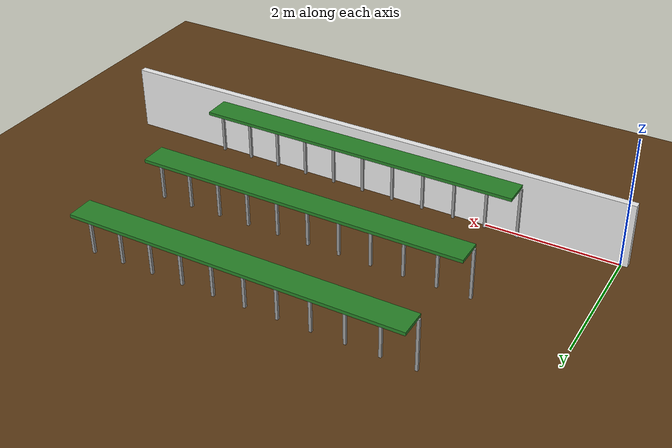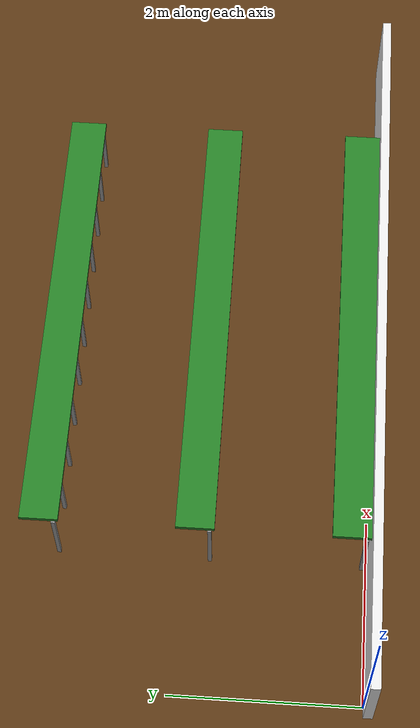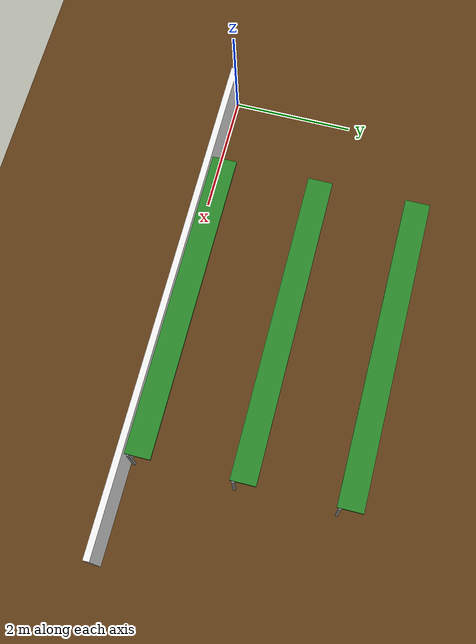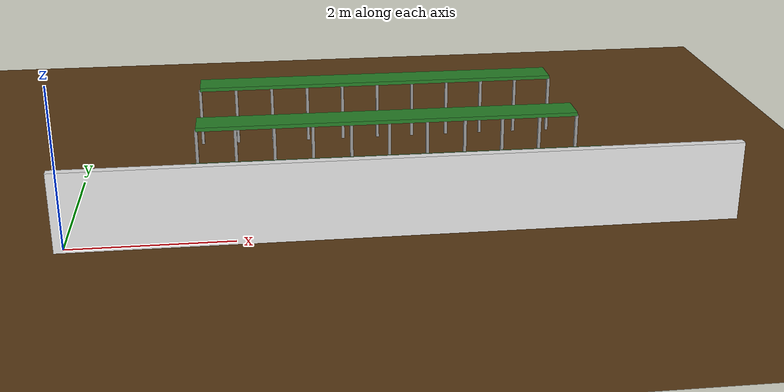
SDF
<sdf version="1.6">
 <world name="greenhouse_5corridor">
  <include><uri>model://sun</uri></include>
  <model name="floor">
   <static>true</static>
   <link name="link">
    <collision name="col"><geometry><plane><normal>0 0 1</normal><size>20 20</size></plane></geometry></collision>
    <visual name="vis">
     <geometry><plane><normal>0 0 1</normal><size>20 20</size></plane></geometry>
     <material><ambient>0.35 0.22 0.08 1</ambient><diffuse>0.35 0.22 0.08 1</diffuse></material>
    </visual>
   </link>
  </model>
  <model name="wall_left">
   <static>true</static>
   <pose>4.0000 -0.0500 0.5 0 0 0</pose>
   <link name="link">
    <collision name="col"><geometry><box><size>8.2000 0.1000 1.0</size></box></geometry></collision>
    <visual name="vis">
     <geometry><box><size>8.2000 0.1000 1.0</size></box></geometry>
     <material><ambient>0.9 0.9 0.9 1</ambient></material>
    </visual>
   </link>
  </model>
  <model name="bed1_top">
   <static>true</static>
   <pose>4.0 0.2000 0.82 0 0 0</pose>
   <link name="link">
    <collision name="col"><geometry><box><size>5.0 0.4 0.05</size></box></geometry></collision>
    <visual name="vis">
     <geometry><box><size>5.0 0.4 0.05</size></box></geometry>
     <material><ambient>0.15 0.5 0.15 1</ambient><diffuse>0.15 0.5 0.15 1</diffuse></material>
    </visual>
   </link>
  </model>
  <model name="bed1_col_1">
   <static>true</static>
   <pose>1.5 0.0500 0.4 0 0 0</pose>
   <link name="link">
    <collision name="col"><geometry><box><size>0.04 0.04 0.8</size></box></geometry></collision>
    <visual name="vis">
     <geometry><box><size>0.04 0.04 0.8</size></box></geometry>
     <material><ambient>0.6 0.6 0.6 1</ambient></material>
    </visual>
   </link>
  </model>
  <model name="bed1_col_2">
   <static>true</static>
   <pose>2.0 0.0500 0.4 0 0 0</pose>
   <link name="link">
    <collision name="col"><geometry><box><size>0.04 0.04 0.8</size></box></geometry></collision>
    <visual name="vis">
     <geometry><box><size>0.04 0.04 0.8</size></box></geometry>
     <material><ambient>0.6 0.6 0.6 1</ambient></material>
    </visual>
   </link>
  </model>
  <model name="bed1_col_3">
   <static>true</static>
   <pose>2.5 0.0500 0.4 0 0 0</pose>
   <link name="link">
    <collision name="col"><geometry><box><size>0.04 0.04 0.8</size></box></geometry></collision>
    <visual name="vis">
     <geometry><box><size>0.04 0.04 0.8</size></box></geometry>
     <material><ambient>0.6 0.6 0.6 1</ambient></material>
    </visual>
   </link>
  </model>
  <model name="bed1_col_4">
   <static>true</static>
   <pose>3.0 0.0500 0.4 0 0 0</pose>
   <link name="link">
    <collision name="col"><geometry><box><size>0.04 0.04 0.8</size></box></geometry></collision>
    <visual name="vis">
     <geometry><box><size>0.04 0.04 0.8</size></box></geometry>
     <material><ambient>0.6 0.6 0.6 1</ambient></material>
    </visual>
   </link>
  </model>
  <model name="bed1_col_5">
   <static>true</static>
   <pose>3.5 0.0500 0.4 0 0 0</pose>
   <link name="link">
    <collision name="col"><geometry><box><size>0.04 0.04 0.8</size></box></geometry></collision>
    <visual name="vis">
     <geometry><box><size>0.04 0.04 0.8</size></box></geometry>
     <material><ambient>0.6 0.6 0.6 1</ambient></material>
    </visual>
   </link>
  </model>
  <model name="bed1_col_6">
   <static>true</static>
   <pose>4.0 0.0500 0.4 0 0 0</pose>
   <link name="link">
    <collision name="col"><geometry><box><size>0.04 0.04 0.8</size></box></geometry></collision>
    <visual name="vis">
     <geometry><box><size>0.04 0.04 0.8</size></box></geometry>
     <material><ambient>0.6 0.6 0.6 1</ambient></material>
    </visual>
   </link>
  </model>
  <model name="bed1_col_7">
   <static>true</static>
   <pose>4.5 0.0500 0.4 0 0 0</pose>
   <link name="link">
    <collision name="col"><geometry><box><size>0.04 0.04 0.8</size></box></geometry></collision>
    <visual name="vis">
     <geometry><box><size>0.04 0.04 0.8</size></box></geometry>
     <material><ambient>0.6 0.6 0.6 1</ambient></material>
    </visual>
   </link>
  </model>
  <model name="bed1_col_8">
   <static>true</static>
   <pose>5.0 0.0500 0.4 0 0 0</pose>
   <link name="link">
    <collision name="col"><geometry><box><size>0.04 0.04 0.8</size></box></geometry></collision>
    <visual name="vis">
     <geometry><box><size>0.04 0.04 0.8</size></box></geometry>
     <material><ambient>0.6 0.6 0.6 1</ambient></material>
    </visual>
   </link>
  </model>
  <model name="bed1_col_9">
   <static>true</static>
   <pose>5.5 0.0500 0.4 0 0 0</pose>
   <link name="link">
    <collision name="col"><geometry><box><size>0.04 0.04 0.8</size></box></geometry></collision>
    <visual name="vis">
     <geometry><box><size>0.04 0.04 0.8</size></box></geometry>
     <material><ambient>0.6 0.6 0.6 1</ambient></material>
    </visual>
   </link>
  </model>
  <model name="bed1_col_10">
   <static>true</static>
   <pose>6.0 0.0500 0.4 0 0 0</pose>
   <link name="link">
    <collision name="col"><geometry><box><size>0.04 0.04 0.8</size></box></geometry></collision>
    <visual name="vis">
     <geometry><box><size>0.04 0.04 0.8</size></box></geometry>
     <material><ambient>0.6 0.6 0.6 1</ambient></material>
    </visual>
   </link>
  </model>
  <model name="bed1_col_11">
   <static>true</static>
   <pose>6.5 0.0500 0.4 0 0 0</pose>
   <link name="link">
    <collision name="col"><geometry><box><size>0.04 0.04 0.8</size></box></geometry></collision>
    <visual name="vis">
     <geometry><box><size>0.04 0.04 0.8</size></box></geometry>
     <material><ambient>0.6 0.6 0.6 1</ambient></material>
    </visual>
   </link>
  </model>
  <model name="bed2_top">
   <static>true</static>
   <pose>4.0 1.8000 0.82 0 0 0</pose>
   <link name="link">
    <collision name="col"><geometry><box><size>5.0 0.4 0.05</size></box></geometry></collision>
    <visual name="vis">
     <geometry><box><size>5.0 0.4 0.05</size></box></geometry>
     <material><ambient>0.15 0.5 0.15 1</ambient><diffuse>0.15 0.5 0.15 1</diffuse></material>
    </visual>
   </link>
  </model>
  <model name="bed2_col_1">
   <static>true</static>
   <pose>1.5 1.6500 0.4 0 0 0</pose>
   <link name="link">
    <collision name="col"><geometry><box><size>0.04 0.04 0.8</size></box></geometry></collision>
    <visual name="vis">
     <geometry><box><size>0.04 0.04 0.8</size></box></geometry>
     <material><ambient>0.6 0.6 0.6 1</ambient></material>
    </visual>
   </link>
  </model>
  <model name="bed2_col_2">
   <static>true</static>
   <pose>2.0 1.6500 0.4 0 0 0</pose>
   <link name="link">
    <collision name="col"><geometry><box><size>0.04 0.04 0.8</size></box></geometry></collision>
    <visual name="vis">
     <geometry><box><size>0.04 0.04 0.8</size></box></geometry>
     <material><ambient>0.6 0.6 0.6 1</ambient></material>
    </visual>
   </link>
  </model>
  <model name="bed2_col_3">
   <static>true</static>
   <pose>2.5 1.6500 0.4 0 0 0</pose>
   <link name="link">
    <collision name="col"><geometry><box><size>0.04 0.04 0.8</size></box></geometry></collision>
    <visual name="vis">
     <geometry><box><size>0.04 0.04 0.8</size></box></geometry>
     <material><ambient>0.6 0.6 0.6 1</ambient></material>
    </visual>
   </link>
  </model>
  <model name="bed2_col_4">
   <static>true</static>
   <pose>3.0 1.6500 0.4 0 0 0</pose>
   <link name="link">
    <collision name="col"><geometry><box><size>0.04 0.04 0.8</size></box></geometry></collision>
    <visual name="vis">
     <geometry><box><size>0.04 0.04 0.8</size></box></geometry>
     <material><ambient>0.6 0.6 0.6 1</ambient></material>
    </visual>
   </link>
  </model>
  <model name="bed2_col_5">
   <static>true</static>
   <pose>3.5 1.6500 0.4 0 0 0</pose>
   <link name="link">
    <collision name="col"><geometry><box><size>0.04 0.04 0.8</size></box></geometry></collision>
    <visual name="vis">
     <geometry><box><size>0.04 0.04 0.8</size></box></geometry>
     <material><ambient>0.6 0.6 0.6 1</ambient></material>
    </visual>
   </link>
  </model>
  <model name="bed2_col_6">
   <static>true</static>
   <pose>4.0 1.6500 0.4 0 0 0</pose>
   <link name="link">
    <collision name="col"><geometry><box><size>0.04 0.04 0.8</size></box></geometry></collision>
    <visual name="vis">
     <geometry><box><size>0.04 0.04 0.8</size></box></geometry>
     <material><ambient>0.6 0.6 0.6 1</ambient></material>
    </visual>
   </link>
  </model>
  <model name="bed2_col_7">
   <static>true</static>
   <pose>4.5 1.6500 0.4 0 0 0</pose>
   <link name="link">
    <collision name="col"><geometry><box><size>0.04 0.04 0.8</size></box></geometry></collision>
    <visual name="vis">
     <geometry><box><size>0.04 0.04 0.8</size></box></geometry>
     <material><ambient>0.6 0.6 0.6 1</ambient></material>
    </visual>
   </link>
  </model>
  <model name="bed2_col_8">
   <static>true</static>
   <pose>5.0 1.6500 0.4 0 0 0</pose>
   <link name="link">
    <collision name="col"><geometry><box><size>0.04 0.04 0.8</size></box></geometry></collision>
    <visual name="vis">
     <geometry><box><size>0.04 0.04 0.8</size></box></geometry>
     <material><ambient>0.6 0.6 0.6 1</ambient></material>
    </visual>
   </link>
  </model>
  <model name="bed2_col_9">
   <static>true</static>
   <pose>5.5 1.6500 0.4 0 0 0</pose>
   <link name="link">
    <collision name="col"><geometry><box><size>0.04 0.04 0.8</size></box></geometry></collision>
    <visual name="vis">
     <geometry><box><size>0.04 0.04 0.8</size></box></geometry>
     <material><ambient>0.6 0.6 0.6 1</ambient></material>
    </visual>
   </link>
  </model>
  <model name="bed2_col_10">
   <static>true</static>
   <pose>6.0 1.6500 0.4 0 0 0</pose>
   <link name="link">
    <collision name="col"><geometry><box><size>0.04 0.04 0.8</size></box></geometry></collision>
    <visual name="vis">
     <geometry><box><size>0.04 0.04 0.8</size></box></geometry>
     <material><ambient>0.6 0.6 0.6 1</ambient></material>
    </visual>
   </link>
  </model>
  <model name="bed2_col_11">
   <static>true</static>
   <pose>6.5 1.6500 0.4 0 0 0</pose>
   <link name="link">
    <collision name="col"><geometry><box><size>0.04 0.04 0.8</size></box></geometry></collision>
    <visual name="vis">
     <geometry><box><size>0.04 0.04 0.8</size></box></geometry>
     <material><ambient>0.6 0.6 0.6 1</ambient></material>
    </visual>
   </link>
  </model>
  <model name="bed3_top">
   <static>true</static>
   <pose>4.0 3.4000 0.82 0 0 0</pose>
   <link name="link">
    <collision name="col"><geometry><box><size>5.0 0.4 0.05</size></box></geometry></collision>
    <visual name="vis">
     <geometry><box><size>5.0 0.4 0.05</size></box></geometry>
     <material><ambient>0.15 0.5 0.15 1</ambient><diffuse>0.15 0.5 0.15 1</diffuse></material>
    </visual>
   </link>
  </model>
  <model name="bed3_col_1">
   <static>true</static>
   <pose>1.5 3.2500 0.4 0 0 0</pose>
   <link name="link">
    <collision name="col"><geometry><box><size>0.04 0.04 0.8</size></box></geometry></collision>
    <visual name="vis">
     <geometry><box><size>0.04 0.04 0.8</size></box></geometry>
     <material><ambient>0.6 0.6 0.6 1</ambient></material>
    </visual>
   </link>
  </model>
  <model name="bed3_col_2">
   <static>true</static>
   <pose>2.0 3.2500 0.4 0 0 0</pose>
   <link name="link">
    <collision name="col"><geometry><box><size>0.04 0.04 0.8</size></box></geometry></collision>
    <visual name="vis">
     <geometry><box><size>0.04 0.04 0.8</size></box></geometry>
     <material><ambient>0.6 0.6 0.6 1</ambient></material>
    </visual>
   </link>
  </model>
  <model name="bed3_col_3">
   <static>true</static>
   <pose>2.5 3.2500 0.4 0 0 0</pose>
   <link name="link">
    <collision name="col"><geometry><box><size>0.04 0.04 0.8</size></box></geometry></collision>
    <visual name="vis">
     <geometry><box><size>0.04 0.04 0.8</size></box></geometry>
     <material><ambient>0.6 0.6 0.6 1</ambient></material>
    </visual>
   </link>
  </model>
  <model name="bed3_col_4">
   <static>true</static>
   <pose>3.0 3.2500 0.4 0 0 0</pose>
   <link name="link">
    <collision name="col"><geometry><box><size>0.04 0.04 0.8</size></box></geometry></collision>
    <visual name="vis">
     <geometry><box><size>0.04 0.04 0.8</size></box></geometry>
     <material><ambient>0.6 0.6 0.6 1</ambient></material>
    </visual>
   </link>
  </model>
  <model name="bed3_col_5">
   <static>true</static>
   <pose>3.5 3.2500 0.4 0 0 0</pose>
   <link name="link">
    <collision name="col"><geometry><box><size>0.04 0.04 0.8</size></box></geometry></collision>
    <visual name="vis">
     <geometry><box><size>0.04 0.04 0.8</size></box></geometry>
     <material><ambient>0.6 0.6 0.6 1</ambient></material>
    </visual>
   </link>
  </model>
  <model name="bed3_col_6">
   <static>true</static>
   <pose>4.0 3.2500 0.4 0 0 0</pose>
   <link name="link">
    <collision name="col"><geometry><box><size>0.04 0.04 0.8</size></box></geometry></collision>
    <visual name="vis">
     <geometry><box><size>0.04 0.04 0.8</size></box></geometry>
     <material><ambient>0.6 0.6 0.6 1</ambient></material>
    </visual>
   </link>
  </model>
  <model name="bed3_col_7">
   <static>true</static>
   <pose>4.5 3.2500 0.4 0 0 0</pose>
   <link name="link">
    <collision name="col"><geometry><box><size>0.04 0.04 0.8</size></box></geometry></collision>
    <visual name="vis">
     <geometry><box><size>0.04 0.04 0.8</size></box></geometry>
     <material><ambient>0.6 0.6 0.6 1</ambient></material>
    </visual>
   </link>
  </model>
  <model name="bed3_col_8">
   <static>true</static>
   <pose>5.0 3.2500 0.4 0 0 0</pose>
   <link name="link">
    <collision name="col"><geometry><box><size>0.04 0.04 0.8</size></box></geometry></collision>
    <visual name="vis">
     <geometry><box><size>0.04 0.04 0.8</size></box></geometry>
     <material><ambient>0.6 0.6 0.6 1</ambient></material>
    </visual>
   </link>
  </model>
  <model name="bed3_col_9">
   <static>true</static>
   <pose>5.5 3.2500 0.4 0 0 0</pose>
   <link name="link">
    <collision name="col"><geometry><box><size>0.04 0.04 0.8</size></box></geometry></collision>
    <visual name="vis">
     <geometry><box><size>0.04 0.04 0.8</size></box></geometry>
     <material><ambient>0.6 0.6 0.6 1</ambient></material>
    </visual>
   </link>
  </model>
  <model name="bed3_col_10">
   <static>true</static>
   <pose>6.0 3.2500 0.4 0 0 0</pose>
   <link name="link">
    <collision name="col"><geometry><box><size>0.04 0.04 0.8</size></box></geometry></collision>
    <visual name="vis">
     <geometry><box><size>0.04 0.04 0.8</size></box></geometry>
     <material><ambient>0.6 0.6 0.6 1</ambient></material>
    </visual>
   </link>
  </model>
  <model name="bed3_col_11">
   <static>true</static>
   <pose>6.5 3.2500 0.4 0 0 0</pose>
   <link name="link">
    <collision name="col"><geometry><box><size>0.04 0.04 0.8</size></box></geometry></collision>
    <visual name="vis">
     <geometry><box><size>0.04 0.04 0.8</size></box></geometry>
     <material><ambient>0.6 0.6 0.6 1</ambient></material>
    </visual>
   </link>
  </model>
 </world>
</sdf>
